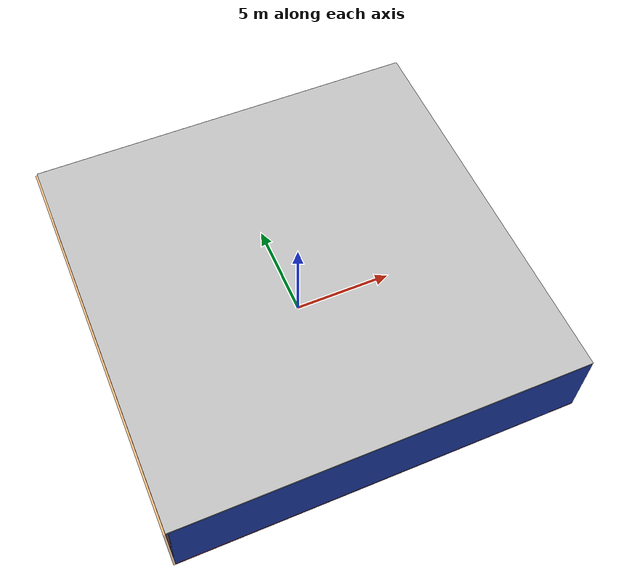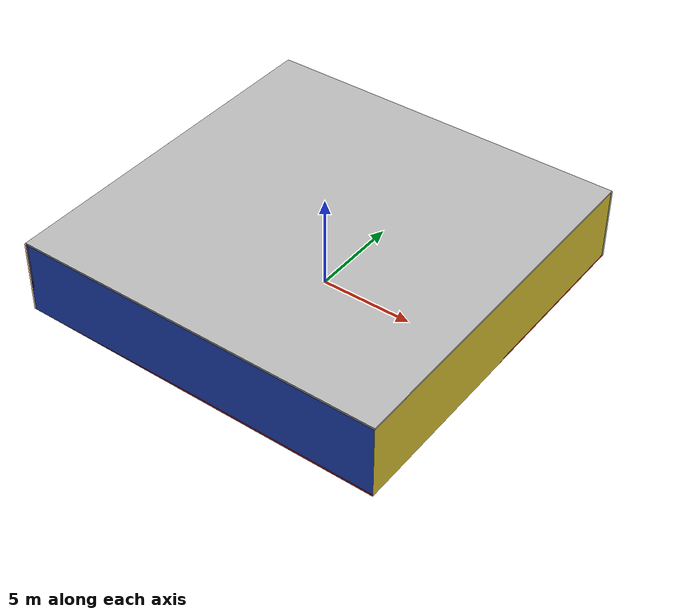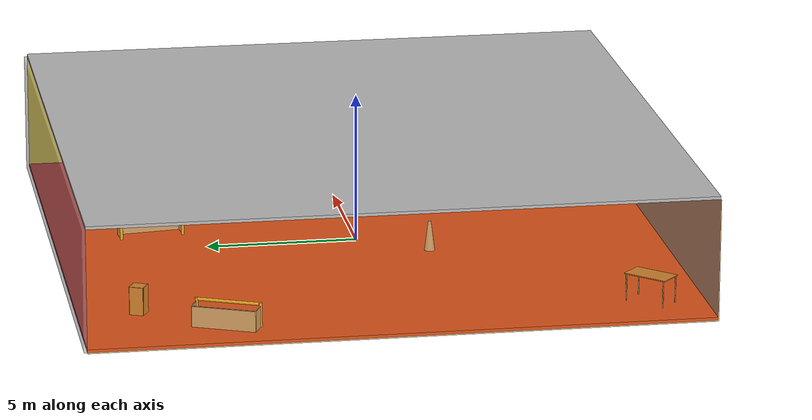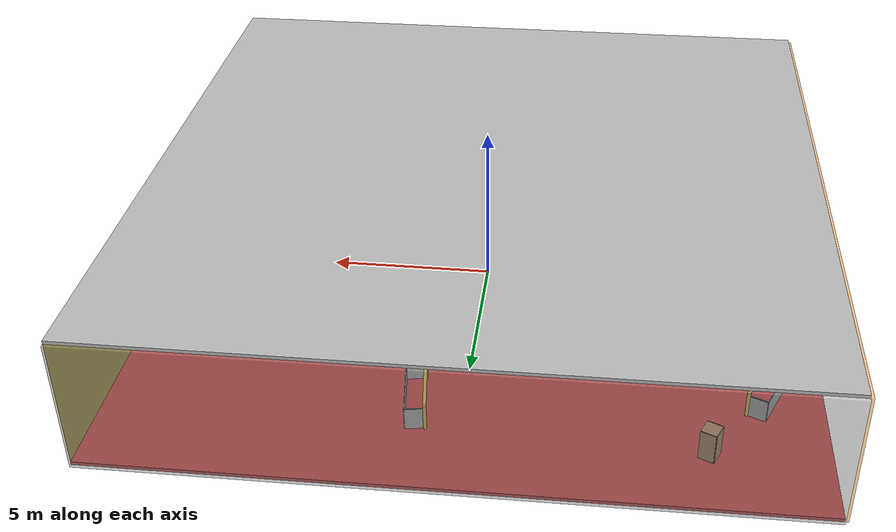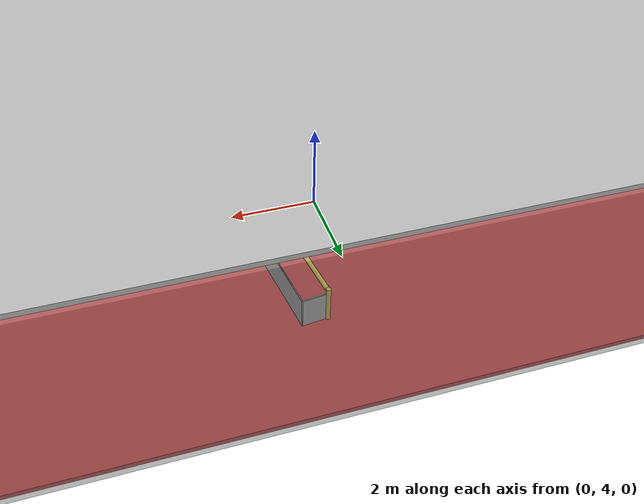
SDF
<sdf version="1.4">
 <world name="default">
  <physics type="ode">
   <max_step_size>0.001</max_step_size>
   <real_time_factor>1</real_time_factor>
   <real_time_update_rate>1000</real_time_update_rate>
   <gravity>0 0 -9.8</gravity>
  </physics>
  <scene><ambient>0.4 0.4 0.4 1</ambient><background>0.7 0.7 0.7 1</background><shadows>1</shadows></scene>
  <model name="Surrounding">
   <static>1</static>
   <link name="Ceiling">
    <collision name="Ceiling_Collision"><geometry><box><size>20 20 0.1</size></box></geometry></collision>
    <visual name="Ceiling_Visual">
     <geometry><box><size>20 20 0.1</size></box></geometry>
     <material>
      <script><uri>file://media/materials/scripts/gazebo.material</uri><name>Gazebo/LightOn</name></script>
     </material>
    </visual>
    <pose>0 0 4.05 0 0 0</pose>
   </link>
   <link name="Wall_South">
    <collision name="Wall_South_Collision">
     <geometry><box><size>20 0 4</size></box></geometry>
     <pose>0 0 2 0 -0 0</pose>
    </collision>
    <visual name="Wall_South_Visual">
     <pose>0 0 2 0 -0 0</pose>
     <geometry><box><size>20 0 4</size></box></geometry>
     <material>
      <script><uri>file://media/materials/scripts/gazebo.material</uri><name>Gazebo/BlueGlow</name></script>
     </material>
    </visual>
    <velocity_decay><linear>0</linear><angular>0</angular></velocity_decay>
    <pose>0 -10 0 0 -0 0</pose>
   </link>
   <link name="Wall_East">
    <collision name="Wall_21_Collision">
     <geometry><box><size>20 0 4</size></box></geometry>
     <pose>0 0 2 0 -0 0</pose>
    </collision>
    <visual name="Wall_21_Visual">
     <pose>0 0 2 0 -0 0</pose>
     <geometry><box><size>20 0 4</size></box></geometry>
     <material>
      <script><uri>file://media/materials/scripts/gazebo.material</uri><name>Gazebo/ZincYellow</name></script>
     </material>
    </visual>
    <velocity_decay><linear>0</linear><angular>0</angular></velocity_decay>
    <pose>10 0 0 0 -0 1.5708</pose>
   </link>
   <link name="Wall_North">
    <collision name="Wall_22_Collision">
     <geometry><box><size>20 0.2 4</size></box></geometry>
     <pose>0 0 2 0 -0 0</pose>
    </collision>
    <visual name="Wall_22_Visual">
     <pose>0 0 2 0 -0 0</pose>
     <geometry><box><size>20 0.2 4</size></box></geometry>
     <material>
      <script><uri>file://media/materials/scripts/gazebo.material</uri><name>Gazebo/GreyTransparent</name></script>
     </material>
    </visual>
    <velocity_decay><linear>0</linear><angular>0</angular></velocity_decay>
    <pose>0 10 0 0 -0 0</pose>
   </link>
   <link name="Wall_West">
    <collision name="Wall_23_Collision">
     <geometry><box><size>20 0.2 4</size></box></geometry>
     <pose>0 0 2 0 -0 0</pose>
    </collision>
    <visual name="Wall_23_Visual">
     <pose>0 0 2 0 -0 0</pose>
     <geometry><box><size>20 0.2 4</size></box></geometry>
     <material>
      <script>
       <uri>file://media/materials/scripts/gazebo.material</uri>
       <name>Gazebo/OrangeTransparent</name>
      </script>
     </material>
    </visual>
    <velocity_decay><linear>0</linear><angular>0</angular></velocity_decay>
    <pose>-10 0 0 0 0 -1.5708</pose>
   </link>
   <link name="Ground_link">
    <collision name="collision">
     <pose>0 0 .05 0 -0 0</pose>
     <geometry><box><size>20 20 0.1</size></box></geometry>
    </collision>
    <visual name="visual">
     <pose>0 0 .05 0 -0 0</pose>
     <geometry><box><size>20 20 0.1</size></box></geometry>
     <material>
      <script><uri>file://media/materials/scripts/gazebo.material</uri><name>Gazebo/RedBright</name></script>
     </material>
    </visual>
   </link>
   <static>1</static>
  </model>
  <spherical_coordinates>
   <surface_model>EARTH_WGS84</surface_model>
   <latitude_deg>0</latitude_deg>
   <longitude_deg>0</longitude_deg>
   <elevation>0</elevation>
   <heading_deg>0</heading_deg>
  </spherical_coordinates>
  <light name="lightball_0" type="diffuse">
   <diffuse>0.8 0.8 0.8 1</diffuse>
   <specular>0.2 0.2 0.2 1</specular>
   <attenuation>
    <range>100</range>
    <constant>0.7</constant>
    <linear>0.01</linear>
    <quadratic>0.001</quadratic>
   </attenuation>
   <direction>-0.5 0.1 -0.9</direction>
   <pose>3.26314712439 -4.0853754502 0.961256429347 0 0 0</pose>
  </light>
  <light name="lightball_1" type="diffuse">
   <diffuse>0.8 0.8 0.8 1</diffuse>
   <specular>0.2 0.2 0.2 1</specular>
   <attenuation>
    <range>100</range>
    <constant>0.7</constant>
    <linear>0.01</linear>
    <quadratic>0.001</quadratic>
   </attenuation>
   <direction>-0.5 0.1 -0.9</direction>
   <pose>2.38802245032 -7.23274919125 0.836903940712 0 0 0</pose>
  </light>
  <light name="lightball_2" type="diffuse">
   <diffuse>0.8 0.8 0.8 1</diffuse>
   <specular>0.2 0.2 0.2 1</specular>
   <attenuation>
    <range>100</range>
    <constant>0.7</constant>
    <linear>0.01</linear>
    <quadratic>0.001</quadratic>
   </attenuation>
   <direction>-0.5 0.1 -0.9</direction>
   <pose>2.95874981523 3.00691316664 1.97613774004 0 0 0</pose>
  </light>
  <light name="lightball_3" type="diffuse">
   <diffuse>0.8 0.8 0.8 1</diffuse>
   <specular>0.2 0.2 0.2 1</specular>
   <attenuation>
    <range>100</range>
    <constant>0.7</constant>
    <linear>0.01</linear>
    <quadratic>0.001</quadratic>
   </attenuation>
   <direction>-0.5 0.1 -0.9</direction>
   <pose>6.35811500662 -0.112621217397 3.68066995429 0 0 0</pose>
  </light>
  <light name="lightball_4" type="diffuse">
   <diffuse>0.8 0.8 0.8 1</diffuse>
   <specular>0.2 0.2 0.2 1</specular>
   <attenuation>
    <range>100</range>
    <constant>0.7</constant>
    <linear>0.01</linear>
    <quadratic>0.001</quadratic>
   </attenuation>
   <direction>-0.5 0.1 -0.9</direction>
   <pose>7.02641573891 2.62638469624 3.26060655598 0 0 0</pose>
  </light>
  <light name="lightball_5" type="diffuse">
   <diffuse>0.8 0.8 0.8 1</diffuse>
   <specular>0.2 0.2 0.2 1</specular>
   <attenuation>
    <range>100</range>
    <constant>0.7</constant>
    <linear>0.01</linear>
    <quadratic>0.001</quadratic>
   </attenuation>
   <direction>-0.5 0.1 -0.9</direction>
   <pose>7.83827613071 9.66542410354 2.81522202677 0 0 0</pose>
  </light>
  <light name="lightball_6" type="diffuse">
   <diffuse>0.8 0.8 0.8 1</diffuse>
   <specular>0.2 0.2 0.2 1</specular>
   <attenuation>
    <range>100</range>
    <constant>0.7</constant>
    <linear>0.01</linear>
    <quadratic>0.001</quadratic>
   </attenuation>
   <direction>-0.5 0.1 -0.9</direction>
   <pose>-8.22950603436 4.7056120662 1.29394759903 0 0 0</pose>
  </light>
  <include><uri>model://table</uri><pose>-8.09887951442 -8.23375287825 0 0 0 0.807639779589</pose></include>
  <include>
   <uri>model://robocup_3Dsim_goal</uri>
   <pose>-8.22800336633 5.35630927891 0 0 0 2.72498680957</pose>
  </include>
  <include><uri>model://cabinet</uri><pose>-6.71122699584 8.0266501049 0 0 0 2.70224999612</pose></include>
  <include>
   <uri>model://construction_cone</uri>
   <pose>-1.76585663767 -2.17572551291 0 0 0 0.0474426094634</pose>
  </include>
  <include>
   <uri>model://robocup_3Dsim_goal</uri>
   <pose>1.04582870004 6.70406397858 0 0 0 0.124660357794</pose>
  </include>
 </world>
</sdf>

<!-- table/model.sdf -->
<sdf version="1.5">
  <model name="table">
    <static>true</static>
    <link name="link">
      <collision name="surface">
        <pose>0 0 1.0 0 0 0</pose>
        <geometry>
          <box>
            <size>1.5 0.8 0.03</size>
          </box>
        </geometry>
        <surface>
          <friction>
            <ode>
              <mu>0.6</mu>
              <mu2>0.6</mu2>
            </ode>
          </friction>
        </surface>
      </collision>
      <visual name="visual1">
        <pose>0 0 1.0 0 0 0</pose>
        <geometry>
          <box>
            <size>1.5 0.8 0.03</size>
          </box>
        </geometry>
        <material>
          <script>
            <uri>model://media/materials/scripts/gazebo.material</uri>
            <name>Gazebo/Wood</name>
          </script>
        </material>
      </visual>
      <collision name="front_left_leg">
        <pose>0.68 0.38 0.5 0 0 0</pose>
        <geometry>
          <cylinder>
            <radius>0.02</radius>
            <length>1.0</length>
          </cylinder>
        </geometry>
      </collision>
      <visual name="front_left_leg">
        <pose>0.68 0.38 0.5 0 0 0</pose>
        <geometry>
          <cylinder>
            <radius>0.02</radius>
            <length>1.0</length>
          </cylinder>
        </geometry>
        <material>
          <script>
            <uri>model://media/materials/scripts/gazebo.material</uri>
            <name>Gazebo/Grey</name>
          </script>
        </material>
      </visual>
      <collision name="front_right_leg">
        <pose>0.68 -0.38 0.5 0 0 0</pose>
        <geometry>
          <cylinder>
            <radius>0.02</radius>
            <length>1.0</length>
          </cylinder>
        </geometry>
      </collision>
      <visual name="front_right_leg">
        <pose>0.68 -0.38 0.5 0 0 0</pose>
        <geometry>
          <cylinder>
            <radius>0.02</radius>
            <length>1.0</length>
          </cylinder>
        </geometry>
        <material>
          <script>
            <uri>model://media/materials/scripts/gazebo.material</uri>
            <name>Gazebo/Grey</name>
          </script>
        </material>
      </visual>
      <collision name="back_right_leg">
        <pose>-0.68 -0.38 0.5 0 0 0</pose>
        <geometry>
          <cylinder>
            <radius>0.02</radius>
            <length>1.0</length>
          </cylinder>
        </geometry>
      </collision>
      <visual name="back_right_leg">
        <pose>-0.68 -0.38 0.5 0 0 0</pose>
        <geometry>
          <cylinder>
            <radius>0.02</radius>
            <length>1.0</length>
          </cylinder>
        </geometry>
        <material>
          <script>
            <uri>model://media/materials/scripts/gazebo.material</uri>
            <name>Gazebo/Grey</name>
          </script>
        </material>
      </visual>
      <collision name="back_left_leg">
        <pose>-0.68 0.38 0.5 0 0 0</pose>
        <geometry>
          <cylinder>
            <radius>0.02</radius>
            <length>1.0</length>
          </cylinder>
        </geometry>
      </collision>
      <visual name="back_left_leg">
        <pose>-0.68 0.38 0.5 0 0 0</pose>
        <geometry>
          <cylinder>
            <radius>0.02</radius>
            <length>1.0</length>
          </cylinder>
        </geometry>
        <material>
          <script>
            <uri>model://media/materials/scripts/gazebo.material</uri>
            <name>Gazebo/Grey</name>
          </script>
        </material>
      </visual>
    </link>
  </model>
</sdf>

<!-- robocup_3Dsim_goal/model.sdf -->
<sdf version="1.5">
  <model name="robocup_3d_goal">
    <static>true</static>
    <link name="left_post">
      <pose>0 1.05 0.45 0 0 0</pose>
      <collision name="collision">
        <geometry>
          <cylinder>
            <radius>0.05</radius>
            <length>0.9</length>
          </cylinder>
        </geometry>
      </collision>
      <visual name="visual">
        <geometry>
          <cylinder>
            <radius>0.05</radius>
            <length>0.9</length>
          </cylinder>
        </geometry>
        <material>
          <script>
            <uri>file://media/materials/scripts/gazebo.material</uri>
            <name>Gazebo/ZincYellow</name>
          </script>
        </material>
      </visual>
    </link>
    <link name="left_support_horiz_lower">
      <pose>0.30 1.05 0.01 0 0 0</pose>
      <collision name="collision">
        <geometry>
          <box>
            <size>0.50 0.02 0.02</size>
          </box>
        </geometry>
      </collision>
      <visual name="visual">
        <geometry>
          <box>
            <size>0.50 0.02 0.02</size>
          </box>
        </geometry>
        <material>
          <script>
            <uri>file://media/materials/scripts/gazebo.material</uri>
            <name>Gazebo/White</name>
          </script>
        </material>
      </visual>
    </link>
    <link name="left_support_horiz_upper">
      <pose>0.30 1.05 0.79 0 0 0</pose>
      <collision name="collision">
        <geometry>
          <box>
            <size>0.50 0.02 0.02</size>
          </box>
        </geometry>
      </collision>
      <visual name="visual">
        <geometry>
          <box>
            <size>0.50 0.02 0.02</size>
          </box>
        </geometry>
        <material>
          <script>
            <uri>file://media/materials/scripts/gazebo.material</uri>
            <name>Gazebo/White</name>
          </script>
        </material>
      </visual>
    </link>
    <link name="left_support_vertical">
      <pose>0.56 1.05 0.4 0 1.5708 0</pose>
      <collision name="collision">
        <geometry>
          <box>
            <size>0.80 0.02 0.02</size>
          </box>
        </geometry>
      </collision>
      <visual name="visual">
        <geometry>
          <box>
            <size>0.80 0.02 0.02</size>
          </box>
        </geometry>
        <material>
          <script>
            <uri>file://media/materials/scripts/gazebo.material</uri>
            <name>Gazebo/White</name>
          </script>
        </material>
      </visual>
    </link>
    <link name="right_support_horiz_lower">
      <pose>0.30 -1.05 0.01 0 0 0</pose>
      <collision name="collision">
        <geometry>
          <box>
            <size>0.50 0.02 0.02</size>
          </box>
        </geometry>
      </collision>
      <visual name="visual">
        <geometry>
          <box>
            <size>0.50 0.02 0.02</size>
          </box>
        </geometry>
        <material>
          <script>
            <uri>file://media/materials/scripts/gazebo.material</uri>
            <name>Gazebo/White</name>
          </script>
        </material>
      </visual>
    </link>
    <link name="right_support_horiz_upper">
      <pose>0.30 -1.05 0.79 0 0 0</pose>
      <collision name="collision">
        <geometry>
          <box>
            <size>0.50 0.02 0.02</size>
          </box>
        </geometry>
      </collision>
      <visual name="visual">
        <geometry>
          <box>
            <size>0.50 0.02 0.02</size>
          </box>
        </geometry>
        <material>
          <script>
            <uri>file://media/materials/scripts/gazebo.material</uri>
            <name>Gazebo/White</name>
          </script>
        </material>
      </visual>
    </link>
    <link name="right_support_vertical">
      <pose>0.56 -1.05 0.4 0 1.5708 0</pose>
      <collision name="collision">
        <geometry>
          <box>
            <size>0.80 0.02 0.02</size>
          </box>
        </geometry>
      </collision>
      <visual name="visual">
        <geometry>
          <box>
            <size>0.80 0.02 0.02</size>
          </box>
        </geometry>
        <material>
          <script>
            <uri>file://media/materials/scripts/gazebo.material</uri>
            <name>Gazebo/White</name>
          </script>
        </material>
      </visual>
    </link>
    <link name="center_support_horiz_lower">
      <pose>0.56 0 0.01 0 1.5708 0</pose>
      <collision name="collision">
        <geometry>
          <box>
            <size>0.02 2.08 0.02</size>
          </box>
        </geometry>
      </collision>
      <visual name="visual">
        <geometry>
          <box>
            <size>0.02 2.08 0.02</size>
          </box>
        </geometry>
        <material>
          <script>
            <uri>file://media/materials/scripts/gazebo.material</uri>
            <name>Gazebo/White</name>
          </script>
        </material>
      </visual>
    </link>
    <link name="center_support_horiz_upper">
      <pose>0.56 0 0.79 0 1.5708 0</pose>
      <collision name="collision">
        <geometry>
          <box>
            <size>0.02 2.08 0.02</size>
          </box>
        </geometry>
      </collision>
      <visual name="visual">
        <geometry>
          <box>
            <size>0.02 2.08 0.02</size>
          </box>
        </geometry>
        <material>
          <script>
            <uri>file://media/materials/scripts/gazebo.material</uri>
            <name>Gazebo/White</name>
          </script>
        </material>
      </visual>
    </link>
    <link name="right_post">
      <pose>0 -1.05 0.45 0 0 0</pose>
      <collision name="collision">
        <geometry>
          <cylinder>
            <radius>0.05</radius>
            <length>0.9</length>
          </cylinder>
        </geometry>
      </collision>
      <visual name="visual">
        <geometry>
          <cylinder>
            <radius>0.05</radius>
            <length>0.9</length>
          </cylinder>
        </geometry>
        <material>
          <script>
            <uri>file://media/materials/scripts/gazebo.material</uri>
            <name>Gazebo/ZincYellow</name>
          </script>
        </material>
      </visual>
    </link>
    <link name="crossbar">
      <pose>0 0 0.85 1.57 1.57 0</pose>
      <collision name="collision">
        <geometry>
          <cylinder>
            <radius>0.05</radius>
            <length>2.0</length>
          </cylinder>
        </geometry>
      </collision>
      <visual name="visual">
        <geometry>
          <cylinder>
            <radius>0.05</radius>
            <length>2.0</length>
          </cylinder>
        </geometry>
        <material>
          <script>
            <uri>file://media/materials/scripts/gazebo.material</uri>
            <name>Gazebo/ZincYellow</name>
          </script>
        </material>
      </visual>
    </link>
    <link name="center_net">
      <pose>0.56 0 0.40 0 0 0</pose>
      <collision name="collision">
        <geometry>
          <box>
            <size>0.01 2.1 0.80</size>
          </box>
        </geometry>
      </collision>
      <visual name="visual">
        <geometry>
          <box>
            <size>0.01 2.1 0.80</size>
          </box>
        </geometry>
        <material>
          <script>
            <uri>model://../model_source/models/robocup09_spl_field/materials/scripts/</uri>
            <uri>model://../model_source/models/robocup09_spl_field/materials/textures/</uri>
            <name>RoboCup/Net</name>
          </script>
        </material>
      </visual>
    </link>
    <link name="left_net">
      <pose>0.30 1.05 0.40 0 0 0</pose>
      <collision name="collision">
        <geometry>
          <box>
            <size>0.50 0.01 0.76</size>
          </box>
        </geometry>
      </collision>
      <visual name="visual">
        <geometry>
          <box>
            <size>0.50 0.01 0.76</size>
          </box>
        </geometry>
        <material>
          <script>
            <uri>model://../model_source/models/robocup09_spl_field/materials/scripts/</uri>
            <uri>model://../model_source/models/robocup09_spl_field/materials/textures/</uri>
            <name>RoboCup/Net</name>
          </script>
        </material>
      </visual>
    </link>
    <link name="right_net">
      <pose>0.30 -1.05 0.40 0 0 0</pose>
      <collision name="collision">
        <geometry>
          <box>
            <size>0.50 0.01 0.76</size>
          </box>
        </geometry>
      </collision>
      <visual name="visual">
        <geometry>
          <box>
            <size>0.50 0.01 0.76</size>
          </box>
        </geometry>
        <material>
          <script>
            <uri>model://../model_source/models/robocup09_spl_field/materials/scripts/</uri>
            <uri>model://../model_source/models/robocup09_spl_field/materials/textures/</uri>
            <name>RoboCup/Net</name>
          </script>
        </material>
      </visual>
    </link>
  </model>
</sdf>

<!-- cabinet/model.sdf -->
<sdf version="1.5">
  <model name="cabinet">
    <static>true</static>
    <link name="cabinet_bottom_plate">
      <inertial>
        <pose>0 0 -1 0 0 0</pose>
        <inertia>
          <ixx>2.050000</ixx>
          <ixy>0</ixy>
          <ixz>0</ixz>
          <iyy>2.050000</iyy>
          <iyz>0</iyz>
          <izz>2.050000</izz>
        </inertia>
        <mass>25.000000</mass>
      </inertial>
      <collision name="cabinet_bottom_plate_geom">
        <pose>0 0 0.010000 0 0 0</pose>
        <geometry>
          <box>
            <size>0.450000 0.450000 0.020000</size>
          </box>
        </geometry>
      </collision>
      <visual name="cabinet_bottom_plate_geom_visual">
        <pose>0 0 0.010000 0 0 0</pose>
        <geometry>
          <box>
            <size>0.450000 0.450000 0.020000</size>
          </box>
        </geometry>
        <material>
          <script>
            <uri>model://media/materials/scripts/gazebo.material</uri>
            <name>Gazebo/Wood</name>
          </script>
        </material>
      </visual>
      <collision name="cabinet_bottom_plate_geom_cabinet_back_plate">
        <pose>0.235000 0 0.510000 0 0 0</pose>
        <geometry>
          <box>
            <size>0.020000 0.450000 1.020000</size>
          </box>
        </geometry>
      </collision>
      <visual name="cabinet_bottom_plate_geom_cabinet_back_plate_visual">
        <pose>0.235000 0 0.510000 0 0 0</pose>
        <geometry>
          <box>
            <size>0.020000 0.450000 1.020000</size>
          </box>
        </geometry>
        <material>
          <script>
            <uri>model://media/materials/scripts/gazebo.material</uri>
            <name>Gazebo/Wood</name>
          </script>
        </material>
      </visual>
      <collision name="cabinet_bottom_plate_geom_cabinet_left_plate">
        <pose>0 0.235000 0.510000 0 0 0</pose>
        <geometry>
          <box>
            <size>0.450000 0.020000 1.020000</size>
          </box>
        </geometry>
      </collision>
      <visual name="cabinet_bottom_plate_geom_cabinet_left_plate_visual">
        <pose>0 0.235000 0.510000 0 0 0</pose>
        <geometry>
          <box>
            <size>0.450000 0.020000 1.020000</size>
          </box>
        </geometry>
        <material>
          <script>
            <uri>model://media/materials/scripts/gazebo.material</uri>
            <name>Gazebo/Wood</name>
          </script>
        </material>
      </visual>
      <collision name="cabinet_bottom_plate_geom_cabinet_middle_plate">
        <pose>0 0 0.510000 0 0 0</pose>
        <geometry>
          <box>
            <size>0.450000 0.450000 0.020000</size>
          </box>
        </geometry>
      </collision>
      <visual name="cabinet_bottom_plate_geom_cabinet_middle_plate_visual">
        <pose>0 0 0.510000 0 0 0</pose>
        <geometry>
          <box>
            <size>0.450000 0.450000 0.020000</size>
          </box>
        </geometry>
        <material>
          <script>
            <uri>model://media/materials/scripts/gazebo.material</uri>
            <name>Gazebo/Wood</name>
          </script>
        </material>
      </visual>
      <collision name="cabinet_bottom_plate_geom_cabinet_right_plate">
        <pose>0 -0.235000 0.510000 0 0 0</pose>
        <geometry>
          <box>
            <size>0.450000 0.020000 1.020000</size>
          </box>
        </geometry>
      </collision>
      <visual name="cabinet_bottom_plate_geom_cabinet_right_plate_visual">
        <pose>0 -0.235000 0.510000 0 0 0</pose>
        <geometry>
          <box>
            <size>0.450000 0.020000 1.020000</size>
          </box>
        </geometry>
        <material>
          <script>
            <uri>model://media/materials/scripts/gazebo.material</uri>
            <name>Gazebo/Wood</name>
          </script>
        </material>
      </visual>
      <collision name="cabinet_bottom_plate_geom_cabinet_top_plate">
        <pose>0 0 1.010000 0 0 0</pose>
        <geometry>
          <box>
            <size>0.450000 0.450000 0.020000</size>
          </box>
        </geometry>
      </collision>
      <visual name="cabinet_bottom_plate_geom_cabinet_top_plate_visual">
        <pose>0 0 1.010000 0 0 0</pose>
        <geometry>
          <box>
            <size>0.450000 0.450000 0.020000</size>
          </box>
        </geometry>
        <material>
          <script>
            <uri>model://media/materials/scripts/gazebo.material</uri>
            <name>Gazebo/Wood</name>
          </script>
        </material>
      </visual>
    </link>
  </model>
</sdf>

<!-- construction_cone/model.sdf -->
<sdf version="1.5">
  <model name="Construction Cone">
    <link name="link">
      <collision name="collision">
        <geometry>
          <mesh>
            <scale>10 10 10</scale>
            <uri>file://isr-testbed/construction_cone/meshes/construction_cone.dae</uri>
          </mesh>
        </geometry>
      </collision>
      <visual name="visual">
        <geometry>
          <mesh>
            <scale>10 10 10</scale>
            <uri>file://isr-testbed/construction_cone/meshes/construction_cone.dae</uri>
          </mesh>
        </geometry>
      </visual>
    </link>
  </model>
</sdf>
